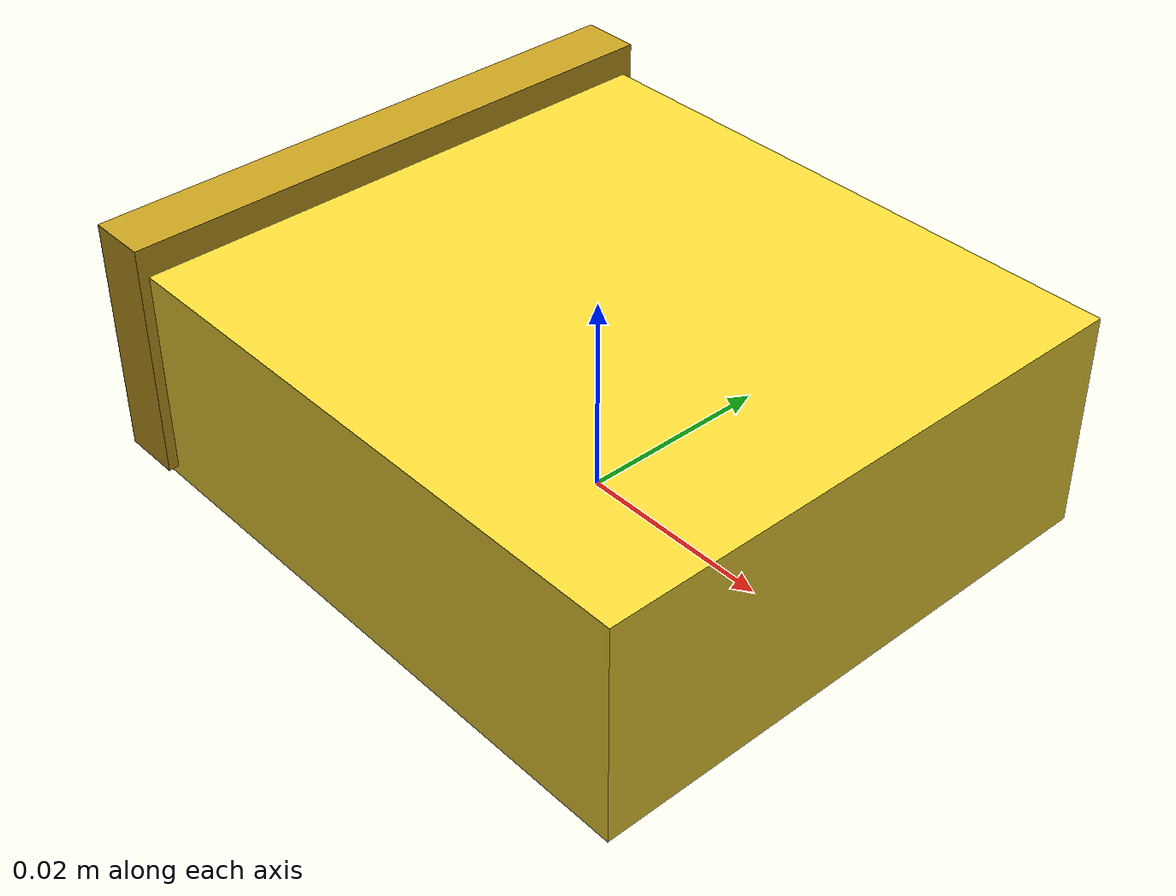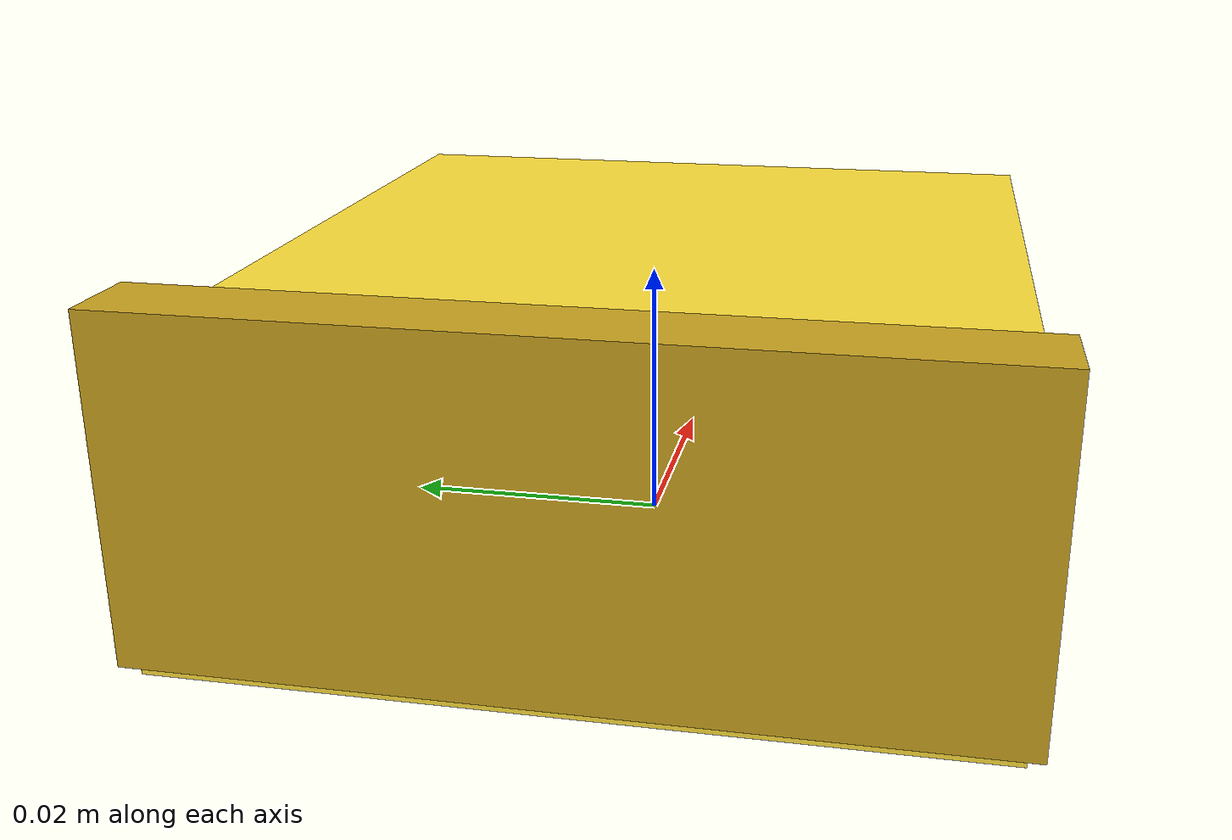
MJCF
<mujoco model="sticky_note_pad">
  <asset>
    <material name="sticky_yellow" rgba="0.98 0.86 0.22 1" specular="0.02" shininess="0.02" />
    <material name="sticky_edge" rgba="0.78 0.63 0.12 1" specular="0.02" shininess="0.02" />
    <material name="collision_invisible" rgba="0.8 0.8 0.8 0" />
  </asset>
  <worldbody>
    <body>
      <body name="object">
        <geom name="sticky_collision" type="box" pos="0 0 0.011" size="0.032 0.028 0.011" material="collision_invisible" group="0" friction="1.4 0.5 0.1" />
        <geom name="sticky_body_visual" type="box" pos="0 0 0.011" size="0.032 0.028 0.011" material="sticky_yellow" group="1" contype="0" conaffinity="0" />
        <geom name="sticky_edge_visual" type="box" pos="-0.030 0 0.013" size="0.003 0.029 0.012" material="sticky_edge" group="1" contype="0" conaffinity="0" />
      </body>
      <site rgba="0 0 0 0" size="0.005" pos="0 0 0.000" name="bottom_site" />
      <site rgba="0 0 0 0" size="0.005" pos="0 0 0.022" name="top_site" />
      <site rgba="0 0 0 0" size="0.005" pos="0.032 0.028 0.011" name="horizontal_radius_site" />
    </body>
  </worldbody>
</mujoco>
